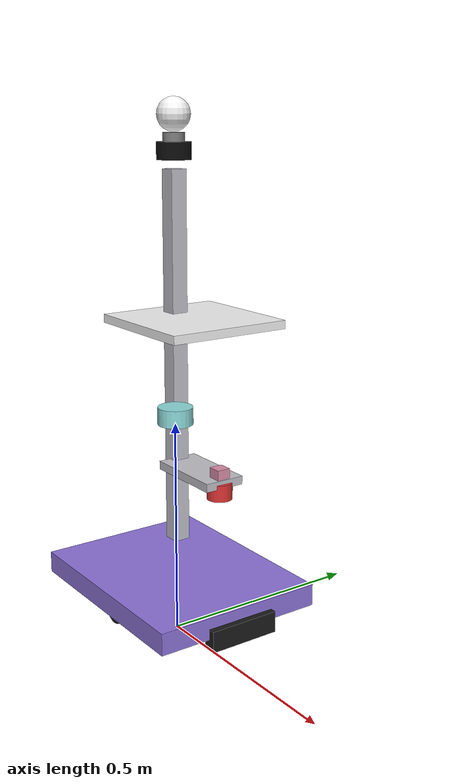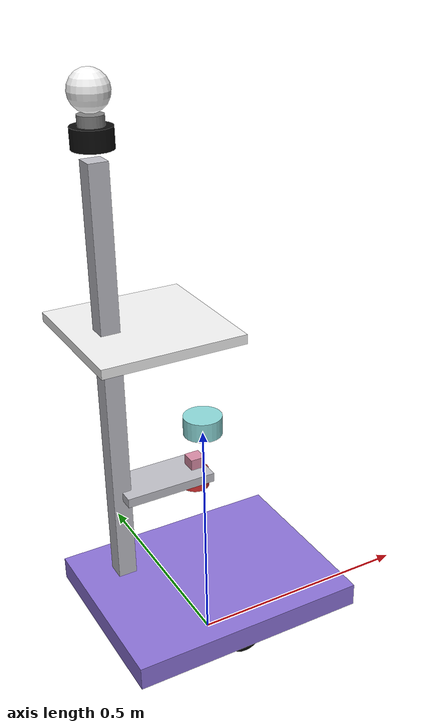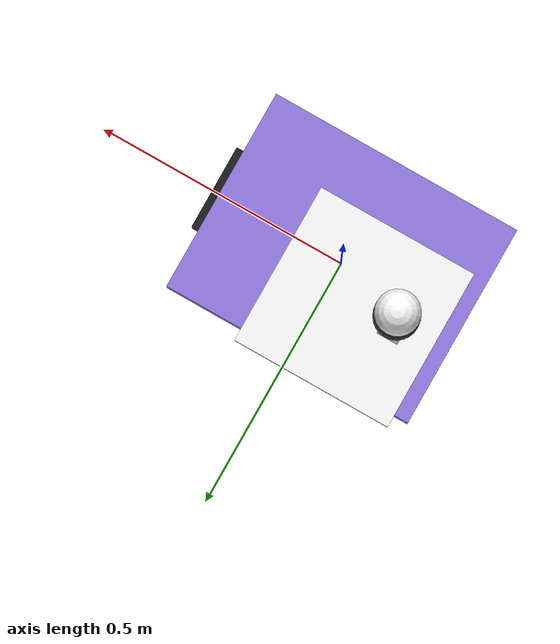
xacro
<?xml version="1.0"?>
<robot xmlns:xacro="http://www.ros.org/wiki/xacro" name="embodied_brain_cart">

  <!-- 全局参数, $(arg use_xiaomi_pt) launch 时可改 -->
  <xacro:arg name="use_xiaomi_pt" default="true"/>

  <!-- 引入通用 macro -->
  <xacro:include filename="$(find my_robot_description)/urdf/common.urdf.xacro"/>

  <!-- 引入主体 -->
  <xacro:include filename="$(find my_robot_description)/urdf/base.urdf.xacro"/>
  <xacro:include filename="$(find my_robot_description)/urdf/pillar.urdf.xacro"/>

  <!-- 引入传感器 -->
  <xacro:include filename="$(find my_robot_description)/urdf/sensor/imu.urdf.xacro"/>
  <xacro:include filename="$(find my_robot_description)/urdf/sensor/laser.urdf.xacro"/>
  <xacro:include filename="$(find my_robot_description)/urdf/sensor/depth_camera.urdf.xacro"/>
  <xacro:include filename="$(find my_robot_description)/urdf/sensor/lift_camera.urdf.xacro"/>
  <xacro:include filename="$(find my_robot_description)/urdf/sensor/pt_camera.urdf.xacro"/>

  <!-- 引入执行器 -->
  <xacro:include filename="$(find my_robot_description)/urdf/actuator/wheel.urdf.xacro"/>
  <xacro:include filename="$(find my_robot_description)/urdf/actuator/caster.urdf.xacro"/>
  <xacro:include filename="$(find my_robot_description)/urdf/actuator/lift_stage.urdf.xacro"/>
  <xacro:include filename="$(find my_robot_description)/urdf/actuator/electromagnet.urdf.xacro"/>

  <!-- ============== 实例化 ============== -->

  <!-- 主体: 底盘 + 立柱 + 顶层托盘 -->
  <!-- 2026-07-19 measured body: 0.50 m long x 0.40 m wide; lower deck is 0.10 m above ground. -->
  <xacro:base_xacro
      length="0.50"
      width="0.40"
      height="0.05"
      wheel_radius="0.04"
      base_ground_clearance="0.10"/>
  <xacro:pillar_xacro
      length="0.04"
      width="0.04"
      height="0.90"
      tray_x="0.30"
      tray_y="0.30"
      tray_z="0.02"
      mount_x="-0.15"
      mount_y="0.10"/>

  <!-- 驱动轮 (左右) -->
  <xacro:wheel_xacro wheel_name="left_wheel"  parent="base_link" xyz="0  0.16 0"/>
  <xacro:wheel_xacro wheel_name="right_wheel" parent="base_link" xyz="0 -0.16 0"/>

  <!-- 万向轮 (前) -->
  <xacro:caster_xacro caster_name="front_caster" parent="base_link" xyz="0.17 0 -0.015" radius="0.025"/>

  <!-- IMU (在底盘几何中心略上方) -->
  <xacro:imu_xacro parent="base_link" xyz="0 0 0.03"/>

  <!-- 深度相机 (底盘前部正中, 略低朝前看, frame 旋转 0 — 看正前) -->
  <!-- Front-centre Astra: optical housing centre measured 0.10 m above ground. -->
  <xacro:depth_camera_xacro
      parent="base_link"
      xyz="0.25 0 0"
      rpy="0 0 0"/>

  <!-- LD14: centred over the chassis, measured 0.50 m above ground. -->
  <xacro:laser_xacro
      parent="base_link"
      xyz="0 0 0.40"
      rpy="0 0 0"/>

  <!-- 监控云台 (立柱顶端) -->
  <xacro:pt_camera_xacro
      parent="pillar_link"
      xyz="0 0 0.92"
      rpy="0 0 0"
      use_xiaomi="$(arg use_xiaomi_pt)"/>

  <!-- 升降臂 (沿立柱滑动, 初始位置 z=0.20 m, 即立柱 0.20m 高度) -->
  <xacro:lift_stage_xacro
      parent="pillar_link"
      arm_length="0.20"
      arm_width="0.10"
      arm_thickness="0.02"
      max_travel="0.60"
      mount_xyz="0 0 0.20"/>

  <!-- 升降臂上的 200W USB 摄像头 (装在臂末端朝下) -->
  <xacro:lift_camera_xacro
      parent="lift_link"
      xyz="0.18 0 0.02"
      rpy="0 ${pi/2} 0"/>

  <!-- 电磁铁 (装在臂末端, 朝下) -->
  <xacro:electromagnet_xacro
      parent="lift_link"
      xyz="0.18 0 0"
      rpy="0 0 0"/>

</robot>

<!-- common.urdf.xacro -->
<robot xmlns:xacro="http://www.ros.org/wiki/xacro">
  <!--
    通用 macro: inertial 和 material color.
    所有 link 共用, 避免每个文件重复写惯量盒子.
  -->

  <!-- 颜色定义 -->
  <material name="black">
    <color rgba="0.05 0.05 0.05 1.0"/>
  </material>
  <material name="white">
    <color rgba="0.95 0.95 0.95 1.0"/>
  </material>
  <material name="grey">
    <color rgba="0.5 0.5 0.5 1.0"/>
  </material>
  <material name="purple">
    <color rgba="0.55 0.45 0.85 1.0"/>
  </material>
  <material name="aluminum">
    <color rgba="0.75 0.75 0.78 1.0"/>
  </material>
  <material name="orbbec_black">
    <color rgba="0.10 0.10 0.10 1.0"/>
  </material>
  <material name="lidar_teal">
    <color rgba="0.55 0.85 0.85 1.0"/>
  </material>
  <material name="xiaomi_white">
    <color rgba="0.96 0.96 0.96 1.0"/>
  </material>
  <material name="usb_cam_pink">
    <color rgba="0.85 0.55 0.65 1.0"/>
  </material>
  <material name="electromagnet_red">
    <color rgba="0.85 0.20 0.20 1.0"/>
  </material>

  <!-- 长方体 inertial macro (盒子) -->
  <xacro:macro name="box_inertial" params="mass x y z">
    <inertial>
      <mass value="${mass}"/>
      <origin xyz="0 0 0" rpy="0 0 0"/>
      <inertia
        ixx="${mass * (y*y + z*z) / 12.0}" ixy="0.0" ixz="0.0"
        iyy="${mass * (x*x + z*z) / 12.0}" iyz="0.0"
        izz="${mass * (x*x + y*y) / 12.0}"/>
    </inertial>
  </xacro:macro>

  <!-- 圆柱体 inertial macro -->
  <xacro:macro name="cylinder_inertial" params="mass radius length">
    <inertial>
      <mass value="${mass}"/>
      <origin xyz="0 0 0" rpy="0 0 0"/>
      <inertia
        ixx="${mass * (3*radius*radius + length*length) / 12.0}" ixy="0.0" ixz="0.0"
        iyy="${mass * (3*radius*radius + length*length) / 12.0}" iyz="0.0"
        izz="${mass * radius*radius / 2.0}"/>
    </inertial>
  </xacro:macro>

  <!-- 球体 inertial macro -->
  <xacro:macro name="sphere_inertial" params="mass radius">
    <inertial>
      <mass value="${mass}"/>
      <origin xyz="0 0 0" rpy="0 0 0"/>
      <inertia
        ixx="${2.0 * mass * radius*radius / 5.0}" ixy="0.0" ixz="0.0"
        iyy="${2.0 * mass * radius*radius / 5.0}" iyz="0.0"
        izz="${2.0 * mass * radius*radius / 5.0}"/>
    </inertial>
  </xacro:macro>
</robot>

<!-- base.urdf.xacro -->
<robot xmlns:xacro="http://www.ros.org/wiki/xacro">
  <!--
    底盘 (purple platform) macro.
    base_footprint (z=0, 接地面) → base_link (底盘几何中心)
    维度按草图占位, 实物到位再调整.
  -->

  <xacro:macro name="base_xacro" params="length:=0.50 width:=0.40 height:=0.05 wheel_radius:=0.04 base_ground_clearance:=0.10">

    <!-- base_footprint: 在地面, 是 robot 的根 frame, Nav2/SLAM 通常从这里出发 -->
    <link name="base_footprint"/>

    <!-- base_link: 底盘几何中心 (在 base_footprint 之上 wheel_radius 高) -->
    <link name="base_link">
      <visual>
        <origin xyz="0 0 ${height/2}" rpy="0 0 0"/>
        <geometry>
          <box size="${length} ${width} ${height}"/>
        </geometry>
        <material name="purple"/>
      </visual>
      <collision>
        <origin xyz="0 0 ${height/2}" rpy="0 0 0"/>
        <geometry>
          <box size="${length} ${width} ${height}"/>
        </geometry>
      </collision>
      <xacro:box_inertial mass="3.0" x="${length}" y="${width}" z="${height}"/>
    </link>

    <!-- footprint → base_link, 抬高一个轮半径 -->
    <joint name="base_footprint_to_base_link" type="fixed">
      <parent link="base_footprint"/>
      <child link="base_link"/>
      <origin xyz="0 0 ${base_ground_clearance}" rpy="0 0 0"/>
    </joint>

  </xacro:macro>
</robot>

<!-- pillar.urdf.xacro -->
<robot xmlns:xacro="http://www.ros.org/wiki/xacro">
  <!--
    立柱 + 顶层托盘. 按草图: 底盘后方右侧立一根 0.9m 高的方柱, 顶端连一个小托盘.
    LD14 雷达 / 小米云台 / 顶层托盘 (放 AI 脑 4K 相机) 都挂在这上面.

    维度待按实物量测.
  -->

  <xacro:macro name="pillar_xacro" params="
      length:=0.04
      width:=0.04
      height:=0.90
      tray_x:=0.30
      tray_y:=0.30
      tray_z:=0.02
      mount_x:=-0.15
      mount_y:=0.10">

    <!-- 立柱 link -->
    <link name="pillar_link">
      <visual>
        <origin xyz="0 0 ${height/2}" rpy="0 0 0"/>
        <geometry>
          <box size="${length} ${width} ${height}"/>
        </geometry>
        <material name="aluminum"/>
      </visual>
      <collision>
        <origin xyz="0 0 ${height/2}" rpy="0 0 0"/>
        <geometry>
          <box size="${length} ${width} ${height}"/>
        </geometry>
      </collision>
      <xacro:box_inertial mass="0.5" x="${length}" y="${width}" z="${height}"/>
    </link>

    <!-- pillar 接到 base_link 后部右侧 -->
    <joint name="base_to_pillar" type="fixed">
      <parent link="base_link"/>
      <child link="pillar_link"/>
      <origin xyz="${mount_x} ${mount_y} 0.05" rpy="0 0 0"/>
    </joint>

    <!-- 顶层托盘 link (放 AI 脑 4K 相机的位置, 物理上挂车上但归 AI 脑用) -->
    <link name="top_tray_link">
      <visual>
        <origin xyz="${tray_x/4} 0 ${tray_z/2}" rpy="0 0 0"/>
        <geometry>
          <box size="${tray_x} ${tray_y} ${tray_z}"/>
        </geometry>
        <material name="white"/>
      </visual>
      <collision>
        <origin xyz="${tray_x/4} 0 ${tray_z/2}" rpy="0 0 0"/>
        <geometry>
          <box size="${tray_x} ${tray_y} ${tray_z}"/>
        </geometry>
      </collision>
      <xacro:box_inertial mass="0.3" x="${tray_x}" y="${tray_y}" z="${tray_z}"/>
    </link>

    <!-- 托盘连到立柱中段 (大约 0.55m 高) -->
    <joint name="pillar_to_top_tray" type="fixed">
      <parent link="pillar_link"/>
      <child link="top_tray_link"/>
      <origin xyz="0 0 0.55" rpy="0 0 0"/>
    </joint>

  </xacro:macro>
</robot>

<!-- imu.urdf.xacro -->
<robot xmlns:xacro="http://www.ros.org/wiki/xacro">
  <!--
    IMU. 当前 STM32F407 板载 (MPU6050 / ICM20602 之类). 暂占位 link, 后期接到 base_link.
    frame_id="imu_link", REP-145 规定 X 前/Y 左/Z 上.
  -->

  <xacro:macro name="imu_xacro" params="parent xyz:='0 0 0' rpy:='0 0 0'">
    <link name="imu_link">
      <visual>
        <origin xyz="0 0 0" rpy="0 0 0"/>
        <geometry>
          <box size="0.02 0.02 0.005"/>
        </geometry>
        <material name="black"/>
      </visual>
      <xacro:box_inertial mass="0.01" x="0.02" y="0.02" z="0.005"/>
    </link>

    <joint name="${parent}_to_imu" type="fixed">
      <parent link="${parent}"/>
      <child link="imu_link"/>
      <origin xyz="${xyz}" rpy="${rpy}"/>
    </joint>
  </xacro:macro>
</robot>

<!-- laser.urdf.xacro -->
<robot xmlns:xacro="http://www.ros.org/wiki/xacro">

  <xacro:macro name="laser_xacro" params="parent xyz:='0 0 0' rpy:='0 0 0'">

    <link name="laser_link">
      <visual>
        <origin xyz="0 0 0.02" rpy="0 0 0"/>
        <geometry>
          <cylinder radius="0.04" length="0.04"/>
        </geometry>
        <material name="lidar_teal"/>
      </visual>
      <collision>
        <origin xyz="0 0 0.02" rpy="0 0 0"/>
        <geometry>
          <cylinder radius="0.04" length="0.04"/>
        </geometry>
      </collision>
      <xacro:cylinder_inertial mass="0.1" radius="0.04" length="0.04"/>
    </link>

    <joint name="${parent}_to_laser" type="fixed">
      <parent link="${parent}"/>
      <child link="laser_link"/>
      <origin xyz="${xyz}" rpy="${rpy}"/>
    </joint>

  </xacro:macro>
</robot>

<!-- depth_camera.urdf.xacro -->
<robot xmlns:xacro="http://www.ros.org/wiki/xacro">

  <xacro:macro name="depth_camera_xacro" params="parent xyz:='0 0 0' rpy:='0 0 0'">

    <!-- 物理盒子 -->
    <link name="depth_camera_link">
      <visual>
        <origin xyz="0 0 0" rpy="0 0 0"/>
        <geometry>
          <box size="0.030 0.16485 0.04825"/>
        </geometry>
        <material name="orbbec_black"/>
      </visual>
      <collision>
        <origin xyz="0 0 0" rpy="0 0 0"/>
        <geometry>
          <box size="0.030 0.16485 0.04825"/>
        </geometry>
      </collision>
      <xacro:box_inertial mass="0.15" x="0.030" y="0.16485" z="0.04825"/>
    </link>

    <joint name="${parent}_to_depth_camera" type="fixed">
      <parent link="${parent}"/>
      <child link="depth_camera_link"/>
      <origin xyz="${xyz}" rpy="${rpy}"/>
    </joint>

    <!-- 光学坐标 (ROS REP-103 标准: 相机光学 frame, X 右 Y 下 Z 前) -->
    <link name="depth_camera_optical_frame"/>
    <joint name="depth_camera_link_to_optical_frame" type="fixed">
      <parent link="depth_camera_link"/>
      <child link="depth_camera_optical_frame"/>
      <!-- 把 ROS 标准 (X 前/Y 左/Z 上) 旋到 光学标准 (X 右/Y 下/Z 前) -->
      <origin xyz="0 0 0" rpy="${-pi/2} 0 ${-pi/2}"/>
    </joint>

  </xacro:macro>
</robot>

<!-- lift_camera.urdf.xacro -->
<robot xmlns:xacro="http://www.ros.org/wiki/xacro">

  <xacro:macro name="lift_camera_xacro" params="parent xyz:='0 0 0' rpy:='0 0 0'">

    <link name="lift_camera_link">
      <visual>
        <origin xyz="0 0 0" rpy="0 0 0"/>
        <geometry>
          <box size="0.028 0.0326 0.0326"/>
        </geometry>
        <material name="usb_cam_pink"/>
      </visual>
      <collision>
        <origin xyz="0 0 0" rpy="0 0 0"/>
        <geometry>
          <box size="0.028 0.0326 0.0326"/>
        </geometry>
      </collision>
      <xacro:box_inertial mass="0.05" x="0.028" y="0.0326" z="0.0326"/>
    </link>

    <joint name="${parent}_to_lift_camera" type="fixed">
      <parent link="${parent}"/>
      <child link="lift_camera_link"/>
      <origin xyz="${xyz}" rpy="${rpy}"/>
    </joint>

    <link name="lift_camera_optical_frame"/>
    <joint name="lift_camera_link_to_optical_frame" type="fixed">
      <parent link="lift_camera_link"/>
      <child link="lift_camera_optical_frame"/>
      <origin xyz="0 0 0" rpy="${-pi/2} 0 ${-pi/2}"/>
    </joint>

  </xacro:macro>
</robot>

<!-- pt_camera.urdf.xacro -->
<robot xmlns:xacro="http://www.ros.org/wiki/xacro">

  <xacro:macro name="pt_camera_xacro" params="parent xyz:='0 0 0' rpy:='0 0 0' use_xiaomi:=true">

    <!-- 云台底座 -->
    <link name="pt_base_link">
      <visual>
        <origin xyz="0 0 0.02" rpy="0 0 0"/>
        <geometry>
          <cylinder radius="0.04" length="0.04"/>
        </geometry>
        <material name="black"/>
      </visual>
      <xacro:cylinder_inertial mass="0.1" radius="0.04" length="0.04"/>
    </link>

    <joint name="${parent}_to_pt_base" type="fixed">
      <parent link="${parent}"/>
      <child link="pt_base_link"/>
      <origin xyz="${xyz}" rpy="${rpy}"/>
    </joint>

    <!-- pan (yaw) 旋转关节 -->
    <link name="pt_pan_link">
      <visual>
        <origin xyz="0 0 0.01" rpy="0 0 0"/>
        <geometry>
          <cylinder radius="0.025" length="0.02"/>
        </geometry>
        <material name="grey"/>
      </visual>
      <xacro:cylinder_inertial mass="0.05" radius="0.025" length="0.02"/>
    </link>

    <xacro:if value="${use_xiaomi}">
      <joint name="pt_pan_joint" type="fixed">
        <parent link="pt_base_link"/>
        <child link="pt_pan_link"/>
        <origin xyz="0 0 0.04" rpy="0 0 0"/>
      </joint>
    </xacro:if>
    <xacro:unless value="${use_xiaomi}">
      <joint name="pt_pan_joint" type="continuous">
        <parent link="pt_base_link"/>
        <child link="pt_pan_link"/>
        <origin xyz="0 0 0.04" rpy="0 0 0"/>
        <axis xyz="0 0 1"/>
      </joint>
    </xacro:unless>

    <!-- tilt (pitch) 关节 -->
    <link name="pt_tilt_link">
      <visual>
        <origin xyz="0 0 0.04" rpy="0 0 0"/>
        <geometry>
          <xacro:if value="${use_xiaomi}">
            <!-- 小米球形头 119 mm 高 -->
            <sphere radius="0.039"/>
          </xacro:if>
          <xacro:unless value="${use_xiaomi}">
            <box size="0.04 0.04 0.04"/>
          </xacro:unless>
        </geometry>
        <material name="xiaomi_white"/>
      </visual>
      <xacro:sphere_inertial mass="0.1" radius="0.039"/>
    </link>

    <xacro:if value="${use_xiaomi}">
      <joint name="pt_tilt_joint" type="fixed">
        <parent link="pt_pan_link"/>
        <child link="pt_tilt_link"/>
        <origin xyz="0 0 0.02" rpy="0 0 0"/>
      </joint>
    </xacro:if>
    <xacro:unless value="${use_xiaomi}">
      <joint name="pt_tilt_joint" type="continuous">
        <parent link="pt_pan_link"/>
        <child link="pt_tilt_link"/>
        <origin xyz="0 0 0.02" rpy="0 0 0"/>
        <axis xyz="0 1 0"/>
      </joint>
    </xacro:unless>

    <!-- 相机光学 frame (云台的"视点") -->
    <link name="pt_camera_link"/>
    <joint name="pt_tilt_to_camera" type="fixed">
      <parent link="pt_tilt_link"/>
      <child link="pt_camera_link"/>
      <origin xyz="0.03 0 0.04" rpy="0 0 0"/>
    </joint>

    <link name="pt_camera_optical_frame"/>
    <joint name="pt_camera_link_to_optical_frame" type="fixed">
      <parent link="pt_camera_link"/>
      <child link="pt_camera_optical_frame"/>
      <origin xyz="0 0 0" rpy="${-pi/2} 0 ${-pi/2}"/>
    </joint>

  </xacro:macro>
</robot>

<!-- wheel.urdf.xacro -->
<robot xmlns:xacro="http://www.ros.org/wiki/xacro">
  <!--
    驱动轮 macro. 步进电机驱动, F407 + 编码器闭环.
    左右两个轮子分别实例化, name 由 wheel_name 参数决定.
    轮子绕 base_link 的 y 轴 (前进/后退方向) 旋转 → joint axis="0 1 0"
  -->

  <xacro:macro name="wheel_xacro" params="
      wheel_name
      parent
      xyz
      radius:=0.04
      length:=0.02">

    <link name="${wheel_name}_link">
      <visual>
        <origin xyz="0 0 0" rpy="${pi/2} 0 0"/>
        <geometry>
          <cylinder radius="${radius}" length="${length}"/>
        </geometry>
        <material name="black"/>
      </visual>
      <collision>
        <origin xyz="0 0 0" rpy="${pi/2} 0 0"/>
        <geometry>
          <cylinder radius="${radius}" length="${length}"/>
        </geometry>
      </collision>
      <xacro:cylinder_inertial mass="0.1" radius="${radius}" length="${length}"/>
    </link>

    <joint name="${wheel_name}_joint" type="continuous">
      <parent link="${parent}"/>
      <child link="${wheel_name}_link"/>
      <origin xyz="${xyz}" rpy="0 0 0"/>
      <axis xyz="0 1 0"/>
    </joint>

  </xacro:macro>
</robot>

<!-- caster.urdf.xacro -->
<robot xmlns:xacro="http://www.ros.org/wiki/xacro">
  <!--
    万向轮 (caster wheel). 球形, 无控制, 跟随被动滚动.
    Nav2 上没有反馈这一关节, 但 URDF 里要给一个 fixed joint 让 TF 树连通.
  -->

  <xacro:macro name="caster_xacro" params="
      caster_name
      parent
      xyz
      radius:=0.025">

    <link name="${caster_name}_link">
      <visual>
        <origin xyz="0 0 0" rpy="0 0 0"/>
        <geometry>
          <sphere radius="${radius}"/>
        </geometry>
        <material name="grey"/>
      </visual>
      <collision>
        <origin xyz="0 0 0" rpy="0 0 0"/>
        <geometry>
          <sphere radius="${radius}"/>
        </geometry>
      </collision>
      <xacro:sphere_inertial mass="0.05" radius="${radius}"/>
    </link>

    <!-- fixed (passive 万向, 不需要发关节状态) -->
    <joint name="${caster_name}_joint" type="fixed">
      <parent link="${parent}"/>
      <child link="${caster_name}_link"/>
      <origin xyz="${xyz}" rpy="0 0 0"/>
    </joint>

  </xacro:macro>
</robot>

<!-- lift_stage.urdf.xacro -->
<robot xmlns:xacro="http://www.ros.org/wiki/xacro">

  <xacro:macro name="lift_stage_xacro" params="
      parent
      arm_length:=0.20
      arm_width:=0.10
      arm_thickness:=0.02
      max_travel:=0.60
      mount_xyz:='0 0 0.20'">

    <!-- 升降臂 link -->
    <link name="lift_link">
      <visual>
        <!-- 视觉中心放在臂的伸出方向 (沿 base_link x 正方向) -->
        <origin xyz="${arm_length/2} 0 0" rpy="0 0 0"/>
        <geometry>
          <box size="${arm_length} ${arm_width} ${arm_thickness}"/>
        </geometry>
        <material name="aluminum"/>
      </visual>
      <collision>
        <origin xyz="${arm_length/2} 0 0" rpy="0 0 0"/>
        <geometry>
          <box size="${arm_length} ${arm_width} ${arm_thickness}"/>
        </geometry>
      </collision>
      <xacro:box_inertial mass="0.3" x="${arm_length}" y="${arm_width}" z="${arm_thickness}"/>
    </link>

    <!-- 沿立柱滑动 (prismatic axis z) -->
    <joint name="lift_joint" type="prismatic">
      <parent link="${parent}"/>
      <child link="lift_link"/>
      <origin xyz="${mount_xyz}" rpy="0 0 0"/>
      <axis xyz="0 0 1"/>
      <limit
        lower="0.0"
        upper="${max_travel}"
        effort="50.0"
        velocity="0.05"/>
    </joint>

  </xacro:macro>
</robot>

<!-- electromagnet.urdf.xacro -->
<robot xmlns:xacro="http://www.ros.org/wiki/xacro">

  <xacro:macro name="electromagnet_xacro" params="
      parent
      xyz:='0 0 0'
      rpy:='0 0 0'
      radius:=0.03
      length:=0.04">

    <link name="electromagnet_link">
      <visual>
        <origin xyz="0 0 ${-length/2}" rpy="0 0 0"/>
        <geometry>
          <cylinder radius="${radius}" length="${length}"/>
        </geometry>
        <material name="electromagnet_red"/>
      </visual>
      <collision>
        <origin xyz="0 0 ${-length/2}" rpy="0 0 0"/>
        <geometry>
          <cylinder radius="${radius}" length="${length}"/>
        </geometry>
      </collision>
      <xacro:cylinder_inertial mass="0.1" radius="${radius}" length="${length}"/>
    </link>

    <joint name="${parent}_to_electromagnet" type="fixed">
      <parent link="${parent}"/>
      <child link="electromagnet_link"/>
      <origin xyz="${xyz}" rpy="${rpy}"/>
    </joint>

  </xacro:macro>
</robot>
